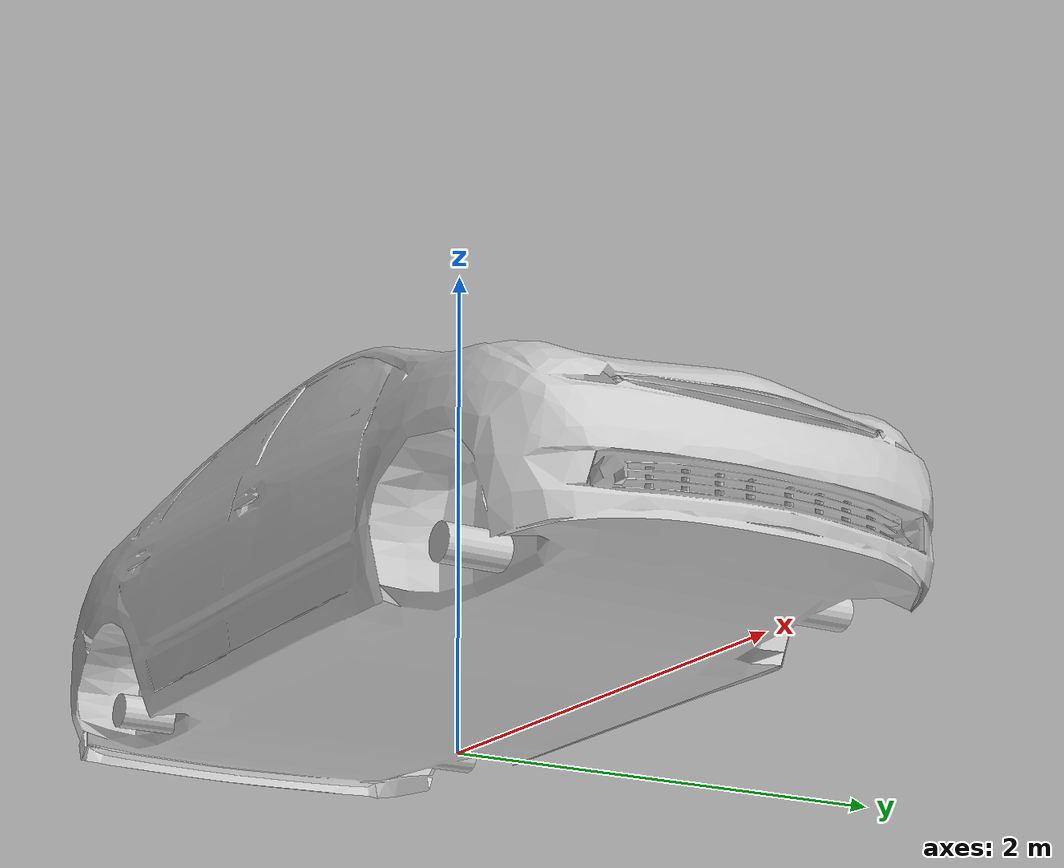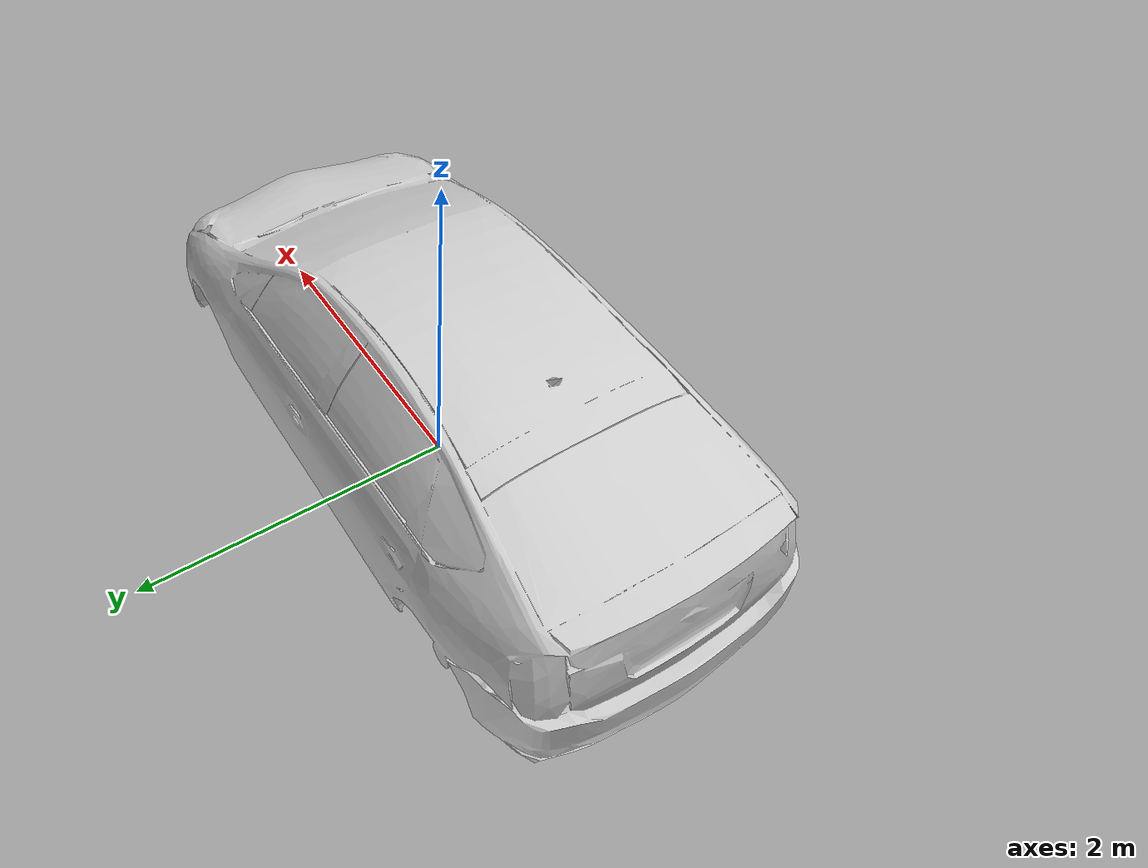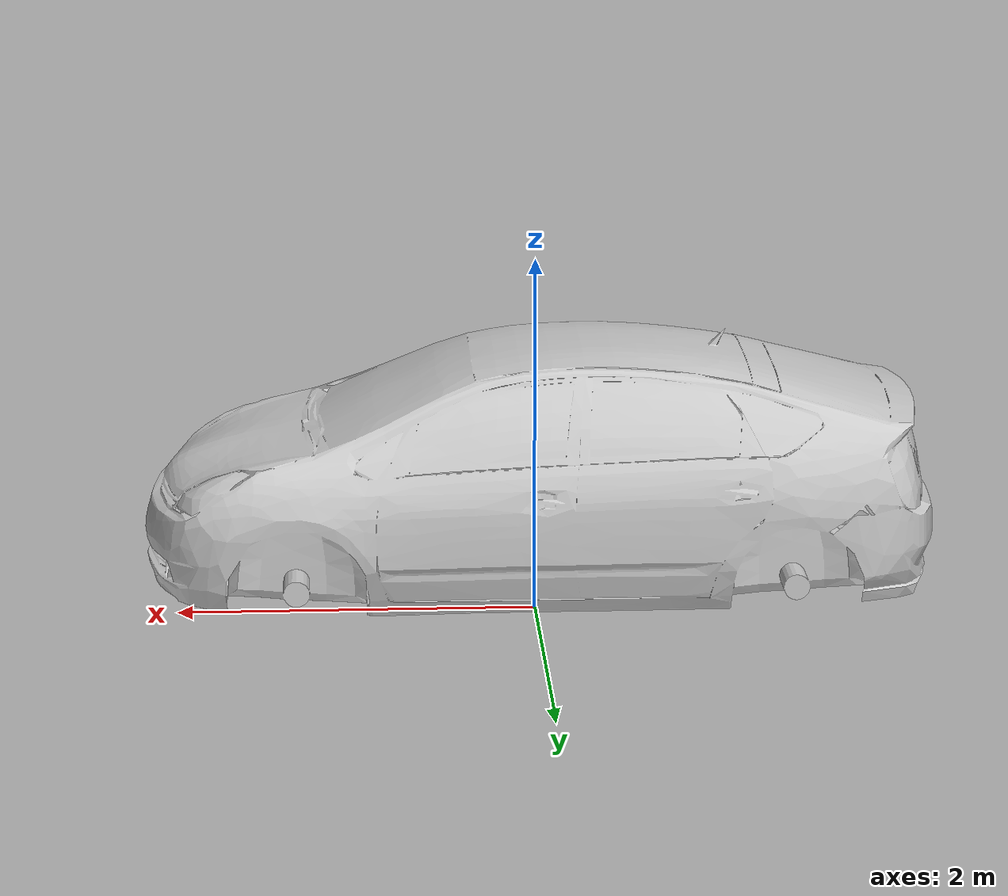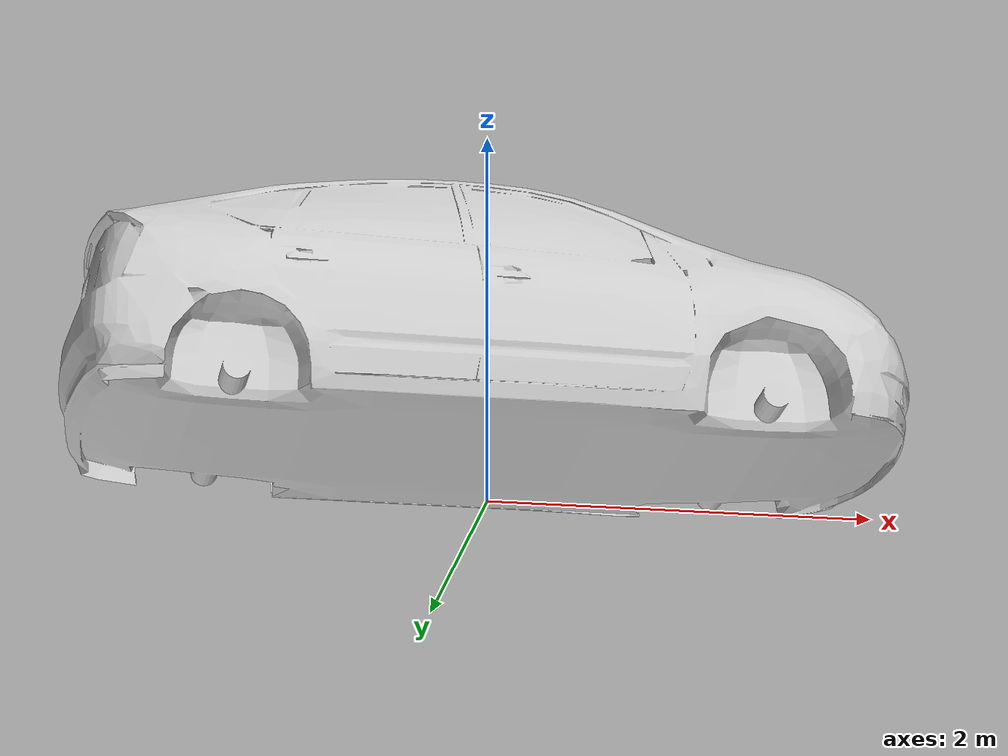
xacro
<?xml version='1.0'?>
<robot name='prius_hybrid' xmlns:xacro='http://ros.org/wiki/xacro'>

  <link name='base_link' />
  <link name='chassis'>
    <visual name='chassis_visual'>
      <origin xyz="0 0 0" rpy="${pi/2} 0 ${pi/2}" />
      <material name="light_grey">
        <color rgba="0.8 0.8 0.8 1.0" />
      </material>
      <geometry>
        <mesh filename='package://prius_bringup/urdf/meshes/prius_support.stl' scale="0.25 0.25 0.25" />
      </geometry>
    </visual>
  </link>
  <joint name='base_joint' type='fixed'>
    <parent link='base_link' />
    <child link='chassis' />
  </joint>

</robot>
